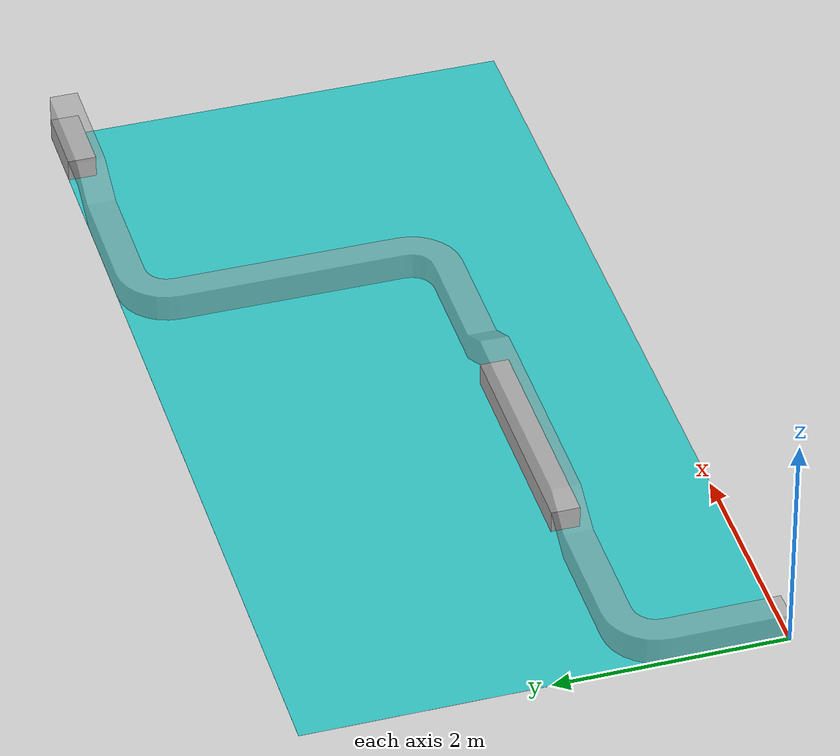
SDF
<sdf version="1.6">
 <world name="default">
  <light name="sun" type="directional">
   <pose>0 0 10 0 -0 0</pose>
   <diffuse>0.8 0.8 0.8 1</diffuse>
   <specular>0.2 0.2 0.2 1</specular>
   <attenuation>
    <range>1000</range>
    <constant>0.9</constant>
    <linear>0.01</linear>
    <quadratic>0.001</quadratic>
   </attenuation>
   <direction>-0.5 0.1 -0.9</direction>
  </light>
  <model name="ground_plane">
   <static>1</static>
   <link name="link">
    <collision name="collision">
     <geometry><plane><normal>0 0 1</normal><size>100 100</size></plane></geometry>
     <surface>
      <contact><collide_bitmask>65535</collide_bitmask></contact>
      <friction><ode><mu>100</mu><mu2>50</mu2></ode></friction>
     </surface>
    </collision>
    <visual name="visual">
     <cast_shadows>0</cast_shadows>
     <geometry><plane><normal>0 0 1</normal><size>100 100</size></plane></geometry>
     <material>
      <script><uri>file://media/materials/scripts/gazebo.material</uri><name>Gazebo/Grey</name></script>
     </material>
    </visual>
   </link>
  </model>
  <gravity>0 0 -9.8</gravity>
  <magnetic_field>6e-06 2.3e-05 -4.2e-05</magnetic_field>
  <atmosphere type="adiabatic"/>
  <physics name="default_physics" default="0" type="ode">
   <max_step_size>0.001</max_step_size>
   <real_time_factor>1</real_time_factor>
   <real_time_update_rate>1000</real_time_update_rate>
  </physics>
  <scene><ambient>0.4 0.4 0.4 1</ambient><background>0.7 0.7 0.7 1</background><shadows>1</shadows></scene>
  <spherical_coordinates>
   <surface_model>EARTH_WGS84</surface_model>
   <latitude_deg>0</latitude_deg>
   <longitude_deg>0</longitude_deg>
   <elevation>0</elevation>
   <heading_deg>0</heading_deg>
  </spherical_coordinates>
  <model name="piping_description">
   <link name="base_link">
    <inertial>
     <pose>3.24515 1.59899 0.092286 0 -0 0</pose>
     <mass>156.486</mass>
     <inertia>
      <ixx>73.0058</ixx>
      <ixy>-38.8097</ixy>
      <ixz>0.730395</ixz>
      <iyy>293.007</iyy>
      <iyz>0.343326</iyz>
      <izz>363.507</izz>
     </inertia>
    </inertial>
    <collision name="base_link_collision">
     <geometry>
      <mesh>
       <scale>1 1 1</scale>
       <uri>/home/seu/mty/autolabor_pro1_pip_teleop/src/piping_description/meshes/base_link.STL</uri>
      </mesh>
     </geometry>
     <surface><friction><ode><mu>0.5</mu><mu2>0.5</mu2></ode></friction></surface>
    </collision>
    <collision name="base_link_fixed_joint_lump__hold1_collision_1">
     <pose>7.5042 3.85 0.001 0 -0 0</pose>
     <geometry>
      <mesh>
       <scale>1 1 1</scale>
       <uri>/home/seu/mty/autolabor_pro1_pip_teleop/src/piping_description/meshes/hold1.STL</uri>
      </mesh>
     </geometry>
     <surface><friction><ode><mu>0.5</mu><mu2>0.5</mu2></ode></friction></surface>
    </collision>
    <collision name="base_link_fixed_joint_lump__hold2_collision_2">
     <pose>1.7964 1.2 0.001 0 -0 0</pose>
     <geometry>
      <mesh>
       <scale>1 1 1</scale>
       <uri>/home/seu/mty/autolabor_pro1_pip_teleop/src/piping_description/meshes/hold2.STL</uri>
      </mesh>
     </geometry>
     <surface><friction><ode><mu>0.5</mu><mu2>0.5</mu2></ode></friction></surface>
    </collision>
    <collision name="base_link_fixed_joint_lump__pip_collision_3">
     <pose>0.002 0 0.003 0 -0 0</pose>
     <geometry>
      <mesh>
       <scale>1 1 1</scale>
       <uri>/home/seu/mty/autolabor_pro1_pip_teleop/src/piping_description/meshes/pip.STL</uri>
      </mesh>
     </geometry>
     <surface><friction><ode><mu>0.5</mu><mu2>0.5</mu2></ode></friction></surface>
    </collision>
    <visual name="base_link_visual">
     <geometry>
      <mesh>
       <scale>1 1 1</scale>
       <uri>/home/seu/mty/autolabor_pro1_pip_teleop/src/piping_description/meshes/base_link.STL</uri>
      </mesh>
     </geometry>
     <material>
      <script><name>Gazebo/Turquoise</name><uri>file://media/materials/scripts/gazebo.material</uri></script>
     </material>
    </visual>
    <visual name="base_link_fixed_joint_lump__hold1_visual_1">
     <pose>7.5042 3.85 0.001 0 -0 0</pose>
     <geometry>
      <mesh>
       <scale>1 1 1</scale>
       <uri>/home/seu/mty/autolabor_pro1_pip_teleop/src/piping_description/meshes/hold1.STL</uri>
      </mesh>
     </geometry>
     <material>
      <script><name>Gazebo/CoM</name><uri>file://media/materials/scripts/gazebo.material</uri></script>
     </material>
    </visual>
    <visual name="base_link_fixed_joint_lump__hold2_visual_2">
     <pose>1.7964 1.2 0.001 0 -0 0</pose>
     <geometry>
      <mesh>
       <scale>1 1 1</scale>
       <uri>/home/seu/mty/autolabor_pro1_pip_teleop/src/piping_description/meshes/hold2.STL</uri>
      </mesh>
     </geometry>
     <material>
      <script><name>Gazebo/CoM</name><uri>file://media/materials/scripts/gazebo.material</uri></script>
     </material>
    </visual>
    <visual name="base_link_fixed_joint_lump__pip_visual_3">
     <pose>0.002 0 0.003 0 -0 0</pose>
     <geometry>
      <mesh>
       <scale>1 1 1</scale>
       <uri>/home/seu/mty/autolabor_pro1_pip_teleop/src/piping_description/meshes/pip.STL</uri>
      </mesh>
     </geometry>
     <material>
      <script><name>Gazebo/GreyTransparent</name><uri>file://media/materials/scripts/gazebo.material</uri></script>
     </material>
    </visual>
   </link>
   <pose>0 1e-06 0 0 1e-06 0</pose>
  </model>
 </world>
</sdf>
